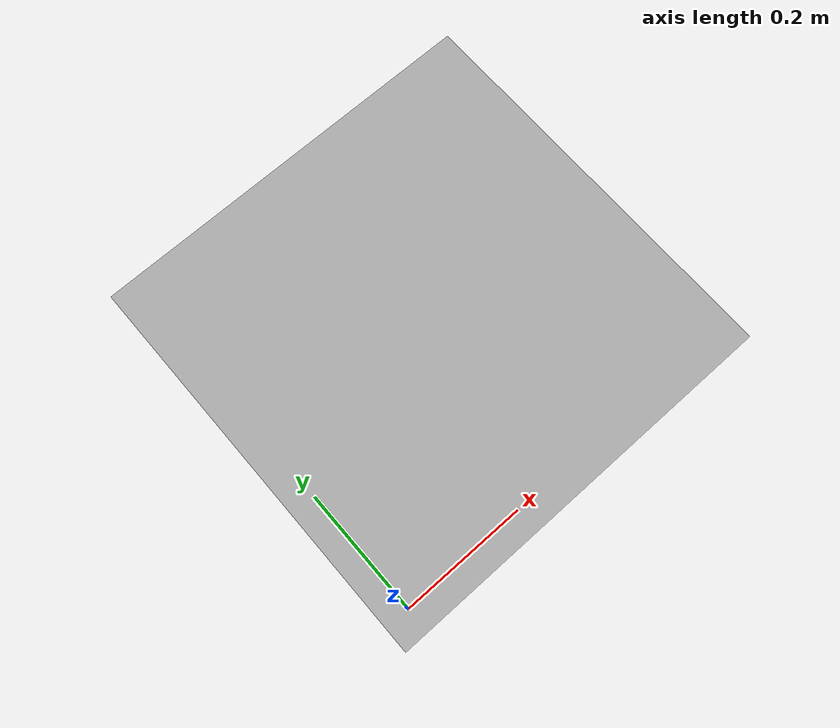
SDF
<?xml version='1.0'?>
<sdf version='1.6'>
  <model name='Apriltag0'>
    <link name='main'>
    <pose frame=''>0.2925 0.2925 -0.005 0 0 1.570796327</pose>
      <visual name='main_Visual'>
        <geometry>
          <box>
          <size>0.6638 0.6638 0.01</size>
          </box>
        </geometry>
           <material>
          <script>
            <uri>model://Apriltag0/materials/scripts</uri>
            <uri>model://Apriltag0/materials/textures</uri>
            <name>Apriltag0</name>
          </script>
        </material>
      </visual>
      <collision name="surface">
        <pose>0 0 0 0 0 0</pose>
        <geometry>
          <box>
          <size>0.6638 0.6638 0.01</size>
          </box>
        </geometry>
      </collision>
     </link>
    <static>1</static>
  </model>
</sdf>
